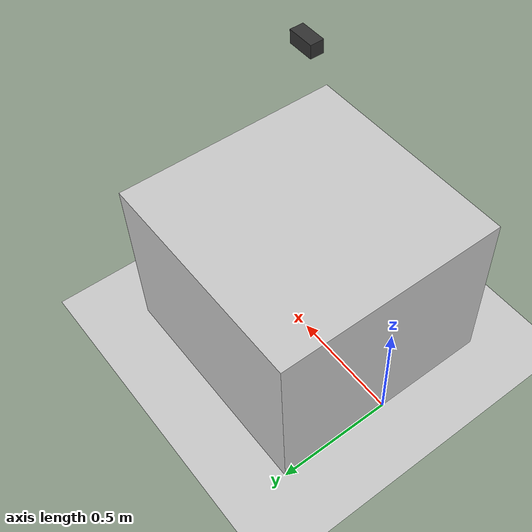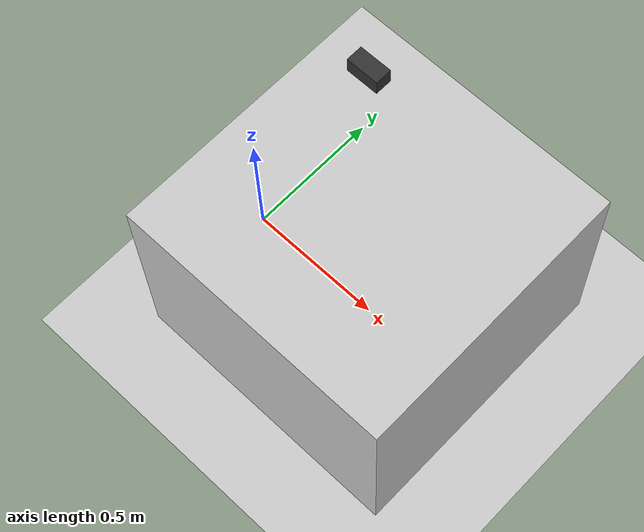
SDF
<?xml version="1.0"?>
<sdf version="1.4">
  <world name="braccio_vision_world">

    <!-- Física -->
    <physics type="ode">
      <max_step_size>0.001</max_step_size>
      <real_time_factor>1</real_time_factor>
      <real_time_update_rate>1000</real_time_update_rate>
    </physics>

    <!-- Iluminación global -->
    <scene>
      <ambient>0.8 0.8 0.8 1.0</ambient>
      <background>0.8 0.8 1.0 1.0</background>
      <shadows>true</shadows>
    </scene>

    <!-- Sol -->
    <include>
      <uri>model://sun</uri>
    </include>

    <!-- Suelo -->
    <include>
      <uri>model://ground_plane</uri>
    </include>

    <!-- Mesa de trabajo -->
    <model name="work_table">
      <static>true</static>
      <pose>0.5 0 0.375 0 0 0</pose>
      <link name="table_surface">
        <collision name="surface">
          <geometry>
            <box>
              <size>1.0 1.0 0.75</size>
            </box>
          </geometry>
        </collision>
        <visual name="surface">
          <geometry>
            <box>
              <size>1.0 1.0 0.75</size>
            </box>
          </geometry>
          <material>
            <ambient>0.8 0.8 0.8 1</ambient>
            <diffuse>0.8 0.8 0.8 1</diffuse>
          </material>
        </visual>
      </link>
    </model>

    <!-- Cámara cenital -->
    <model name="overhead_camera">
      <static>true</static>
      <pose>0.5 0 1.5 0 1.57 0</pose> <!-- Posición: x=0.5, y=0, z=1.5m, apuntando hacia abajo -->

      <link name="camera_link">

        <!-- Cuerpo de la cámara (visual) -->
        <visual name="camera_visual">
          <geometry>
            <box>
              <size>0.05 0.05 0.1</size>
            </box>
          </geometry>
          <material>
            <ambient>0.2 0.2 0.2 1</ambient>
            <diffuse>0.2 0.2 0.2 1</diffuse>
          </material>
        </visual>

        <!-- Colisión de la cámara -->
        <collision name="camera_collision">
          <geometry>
            <box>
              <size>0.05 0.05 0.1</size>
            </box>
          </geometry>
        </collision>

        <!-- Sensor de cámara -->
        <sensor type="camera" name="overhead_camera_sensor">
          <update_rate>30.0</update_rate>
          <visualize>true</visualize>

          <camera name="overhead_camera">
            <horizontal_fov>1.047</horizontal_fov> <!-- 60 grados -->
            <image>
              <width>640</width>
              <height>480</height>
              <format>R8G8B8</format>
            </image>
            <clip>
              <near>0.1</near>
              <far>100</far>
            </clip>
            <noise>
              <type>gaussian</type>
              <mean>0.0</mean>
              <stddev>0.007</stddev>
            </noise>
          </camera>

          <!-- Plugin de ROS2 para la cámara -->
          <plugin name="camera_controller" filename="libgazebo_ros_camera.so">
            <ros>
              <namespace>/</namespace>
              <remapping>image_raw:=overhead_camera/image_raw</remapping>
              <remapping>camera_info:=overhead_camera/camera_info</remapping>
            </ros>
            <camera_name>overhead_camera</camera_name>
            <frame_name>overhead_camera_link</frame_name>
            <hack_baseline>0.07</hack_baseline>
          </plugin>

        </sensor>
      </link>
    </model>

    <!-- Iluminación adicional para mejor visión -->
    <light type="directional" name="overhead_light">
      <pose>0.5 0 2.0 0 0 0</pose>
      <diffuse>1.0 1.0 1.0 1</diffuse>
      <specular>0.5 0.5 0.5 1</specular>
      <direction>0 0 -1</direction>
      <attenuation>
        <range>1000</range>
      </attenuation>
      <cast_shadows>true</cast_shadows>
    </light>

  </world>
</sdf>
